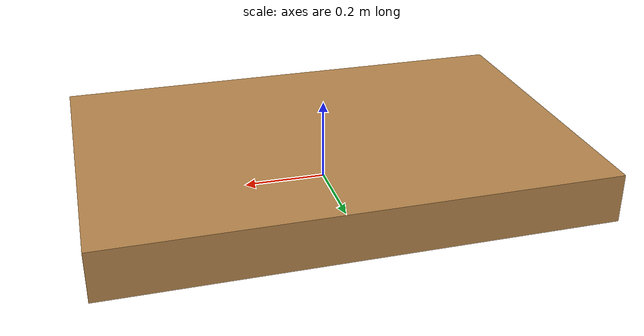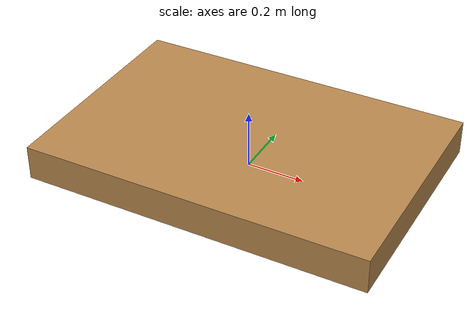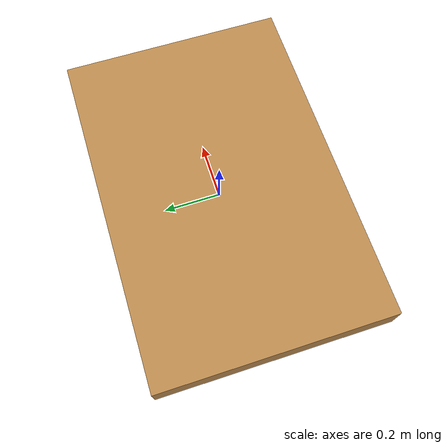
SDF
<?xml version="1.0" ?>
<sdf version="1.9">
  <world name="warehouse">
    <light name="sun" type="directional">
      <cast_shadows>true</cast_shadows>
      <pose>0 0 10 0 0 0</pose>
      <diffuse>0.8 0.8 0.8 1</diffuse>
      <direction>-0.5 0.1 -0.9</direction>
    </light>

    <model name="ground_plane">
      <static>true</static>
      <link name="link">
        <collision name="collision">
          <geometry>
            <plane>
              <normal>0 0 1</normal>
              <size>100 100</size>
            </plane>
          </geometry>
        </collision>
      </link>
    </model>

    <model name="pallet_a">
      <static>true</static>
      <pose>0 0 0.06 0 0 0</pose>
      <link name="link">
        <inertial>
          <mass>12.5</mass>
        </inertial>
        <collision name="collision">
          <geometry>
            <box>
              <size>1.2 0.8 0.12</size>
            </box>
          </geometry>
          <surface>
            <friction>
              <ode>
                <mu>0.8</mu>
              </ode>
            </friction>
          </surface>
        </collision>
        <visual name="visual">
          <geometry>
            <box>
              <size>1.2 0.8 0.12</size>
            </box>
          </geometry>
          <material>
            <diffuse>0.72 0.53 0.30 1</diffuse>
          </material>
        </visual>
      </link>
    </model>

    <model name="pallet_b">
      <static>true</static>
      <pose>1.5 0 0.06 0 0 1.5707963267948966</pose>
      <link name="link">
        <inertial>
          <mass>12.5</mass>
        </inertial>
        <collision name="collision">
          <geometry>
            <box>
              <size>1.2 0.8 0.12</size>
            </box>
          </geometry>
        </collision>
      </link>
    </model>

    <model name="drum">
      <pose>0.4 1.2 0.45 0 0 0</pose>
      <link name="link">
        <inertial>
          <mass>60</mass>
        </inertial>
        <collision name="collision">
          <geometry>
            <cylinder>
              <radius>0.29</radius>
              <length>0.9</length>
            </cylinder>
          </geometry>
        </collision>
      </link>
    </model>
  </world>
</sdf>
